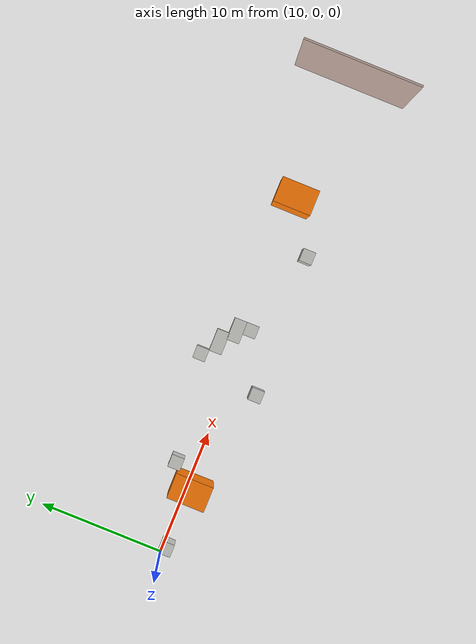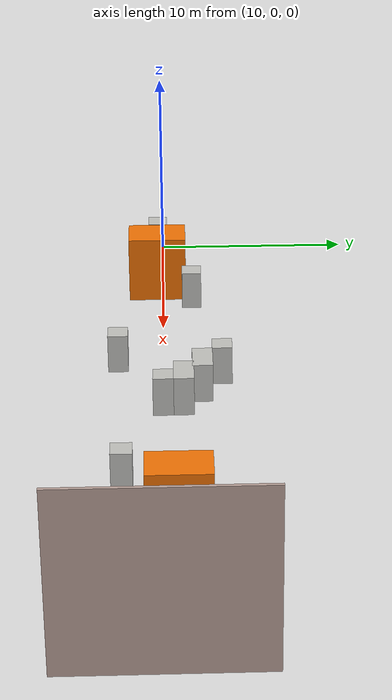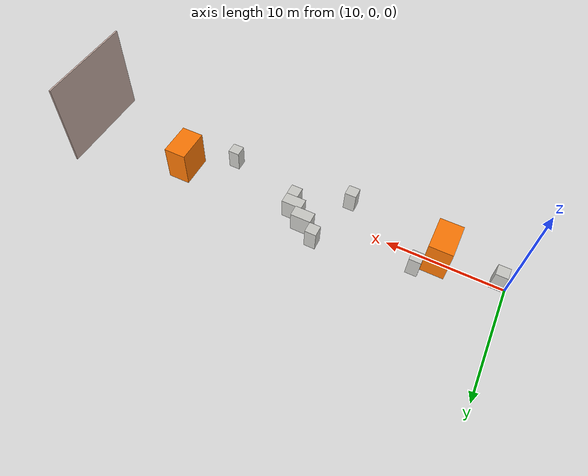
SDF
<sdf version="1.7">
 <world name="default">
  <light name="sun" type="directional">
   <pose>0 0 10 0 -0 0</pose>
   <diffuse>0.8 0.8 0.8 1</diffuse>
   <specular>0.2 0.2 0.2 1</specular>
   <attenuation>
    <range>1000</range>
    <constant>0.9</constant>
    <linear>0.01</linear>
    <quadratic>0.001</quadratic>
   </attenuation>
   <direction>-0.5 0.1 -0.9</direction>
   <spot><inner_angle>0</inner_angle><outer_angle>0</outer_angle><falloff>0</falloff></spot>
  </light>
  <gravity>0 0 -9.8</gravity>
  <magnetic_field>6e-06 2.3e-05 -4.2e-05</magnetic_field>
  <atmosphere type="adiabatic"/>
  <physics type="ode">
   <max_step_size>0.001</max_step_size>
   <real_time_factor>1</real_time_factor>
   <real_time_update_rate>1000</real_time_update_rate>
  </physics>
  <scene><ambient>0.4 0.4 0.4 1</ambient><background>0.7 0.7 0.7 1</background><shadows>1</shadows></scene>
  <spherical_coordinates>
   <surface_model>EARTH_WGS84</surface_model>
   <latitude_deg>0</latitude_deg>
   <longitude_deg>0</longitude_deg>
   <elevation>0</elevation>
   <heading_deg>0</heading_deg>
  </spherical_coordinates>
  <model name="tunnel_wall">
   <pose>41.9281 0 0 0 -0 0</pose>
   <link name="Wall_0">
    <collision name="Wall_0_Collision">
     <geometry><box><size>9.15 0.15 8.5</size></box></geometry>
     <pose>0 0 4.25 0 -0 0</pose>
    </collision>
    <visual name="Wall_0_Visual">
     <pose>0 0 4.25 0 -0 0</pose>
     <geometry><box><size>9.15 0.15 8.5</size></box></geometry>
     <material>
      <script><uri>file://media/materials/scripts/gazebo.material</uri><name>Gazebo/Grey</name></script>
      <ambient>0.760784 0.662745 0.627451 1</ambient>
     </material>
     <meta><layer>0</layer></meta>
    </visual>
    <pose>7.4625 0 0 0 -0 1.5708</pose>
   </link>
   <static>1</static>
  </model>
  <model name="box_1_1_2">
   <pose>11.6268 1.17689 0 0 -0 0</pose>
   <link name="Wall_0">
    <collision name="Wall_0_Collision">
     <geometry><box><size>1.01 1 2</size></box></geometry>
     <pose>0 0 1 0 -0 0</pose>
    </collision>
    <visual name="Wall_0_Visual">
     <pose>0 0 1 0 -0 0</pose>
     <geometry><box><size>1.01 1 2</size></box></geometry>
     <material>
      <script><uri>file://media/materials/scripts/gazebo.material</uri><name>Gazebo/CeilingTiled</name></script>
      <ambient>0.921569 0.807843 0.615686 1</ambient>
     </material>
     <meta><layer>0</layer></meta>
    </visual>
    <pose>-0.85 -1.44 0 0 -0 0</pose>
   </link>
   <static>1</static>
  </model>
  <model name="box_1_1_2_0">
   <pose>18.0507 2.96156 0 0 -0 0</pose>
   <link name="Wall_0">
    <collision name="Wall_0_Collision">
     <geometry><box><size>1.01 1 2</size></box></geometry>
     <pose>0 0 1 0 -0 0</pose>
    </collision>
    <visual name="Wall_0_Visual">
     <pose>0 0 1 0 -0 0</pose>
     <geometry><box><size>1.01 1 2</size></box></geometry>
     <material>
      <script><uri>file://media/materials/scripts/gazebo.material</uri><name>Gazebo/CeilingTiled</name></script>
      <ambient>0.921569 0.807843 0.615686 1</ambient>
     </material>
     <meta><layer>0</layer></meta>
    </visual>
    <pose>-0.85 -1.44 0 0 -0 0</pose>
   </link>
   <static>1</static>
  </model>
  <model name="box_1_1_2_1">
   <pose>25.1167 -0.811395 0 0 -0 0</pose>
   <link name="Wall_0">
    <collision name="Wall_0_Collision">
     <geometry><box><size>1.01 1 2</size></box></geometry>
     <pose>0 0 1 0 -0 0</pose>
    </collision>
    <visual name="Wall_0_Visual">
     <pose>0 0 1 0 -0 0</pose>
     <geometry><box><size>1.01 1 2</size></box></geometry>
     <material>
      <script><uri>file://media/materials/scripts/gazebo.material</uri><name>Gazebo/CeilingTiled</name></script>
      <ambient>0.921569 0.807843 0.615686 1</ambient>
     </material>
     <meta><layer>0</layer></meta>
    </visual>
    <pose>-0.85 -1.44 0 0 -0 0</pose>
   </link>
   <static>1</static>
  </model>
  <model name="box_1_1_2_2">
   <pose>29.5831 1.4324 0 0 -0 0</pose>
   <link name="Wall_0">
    <collision name="Wall_0_Collision">
     <geometry><box><size>1.01 1 2</size></box></geometry>
     <pose>0 0 1 0 -0 0</pose>
    </collision>
    <visual name="Wall_0_Visual">
     <pose>0 0 1 0 -0 0</pose>
     <geometry><box><size>1.01 1 2</size></box></geometry>
     <material>
      <script><uri>file://media/materials/scripts/gazebo.material</uri><name>Gazebo/CeilingTiled</name></script>
      <ambient>0.921569 0.807843 0.615686 1</ambient>
     </material>
     <meta><layer>0</layer></meta>
    </visual>
    <pose>-0.85 -1.44 0 0 -0 0</pose>
   </link>
   <static>1</static>
  </model>
  <model name="box_1.8_1_2">
   <pose>28.7837 2.42278 0 0 -0 0</pose>
   <link name="Wall_0">
    <collision name="Wall_0_Collision">
     <geometry><box><size>1.8 1 2</size></box></geometry>
     <pose>0 0 1 0 -0 0</pose>
    </collision>
    <visual name="Wall_0_Visual">
     <pose>0 0 1 0 -0 0</pose>
     <geometry><box><size>1.8 1 2</size></box></geometry>
     <material>
      <script><uri>file://media/materials/scripts/gazebo.material</uri><name>Gazebo/CeilingTiled</name></script>
      <ambient>0.921569 0.807843 0.615686 1</ambient>
     </material>
     <meta><layer>0</layer></meta>
    </visual>
    <pose>-0.455 -1.44 0 0 -0 0</pose>
   </link>
   <static>1</static>
  </model>
  <model name="box_1.8_1_2_0">
   <pose>27.4993 3.35385 0 0 -0 0</pose>
   <link name="Wall_0">
    <collision name="Wall_0_Collision">
     <geometry><box><size>1.8 1 2</size></box></geometry>
     <pose>0 0 1 0 -0 0</pose>
    </collision>
    <visual name="Wall_0_Visual">
     <pose>0 0 1 0 -0 0</pose>
     <geometry><box><size>1.8 1 2</size></box></geometry>
     <material>
      <script><uri>file://media/materials/scripts/gazebo.material</uri><name>Gazebo/CeilingTiled</name></script>
      <ambient>0.921569 0.807843 0.615686 1</ambient>
     </material>
     <meta><layer>0</layer></meta>
    </visual>
    <pose>-0.455 -1.44 0 0 -0 0</pose>
   </link>
   <static>1</static>
  </model>
  <model name="box_1_1_2_3">
   <pose>26.5208 4.34318 0 0 -0 0</pose>
   <link name="Wall_0">
    <collision name="Wall_0_Collision">
     <geometry><box><size>1.01 1 2</size></box></geometry>
     <pose>0 0 1 0 -0 0</pose>
    </collision>
    <visual name="Wall_0_Visual">
     <pose>0 0 1 0 -0 0</pose>
     <geometry><box><size>1.01 1 2</size></box></geometry>
     <material>
      <script><uri>file://media/materials/scripts/gazebo.material</uri><name>Gazebo/CeilingTiled</name></script>
      <ambient>0.921569 0.807843 0.615686 1</ambient>
     </material>
     <meta><layer>0</layer></meta>
    </visual>
    <pose>-0.85 -1.44 0 0 -0 0</pose>
   </link>
   <static>1</static>
  </model>
  <model name="box_1_1_2_4">
   <pose>36.4694 -0.458762 0 0 -0 0</pose>
   <link name="Wall_0">
    <collision name="Wall_0_Collision">
     <geometry><box><size>1.01 1 2</size></box></geometry>
     <pose>0 0 1 0 -0 0</pose>
    </collision>
    <visual name="Wall_0_Visual">
     <pose>0 0 1 0 -0 0</pose>
     <geometry><box><size>1.01 1 2</size></box></geometry>
     <material>
      <script><uri>file://media/materials/scripts/gazebo.material</uri><name>Gazebo/CeilingTiled</name></script>
      <ambient>0.921569 0.807843 0.615686 1</ambient>
     </material>
     <meta><layer>0</layer></meta>
    </visual>
    <pose>-0.85 -1.44 0 0 -0 0</pose>
   </link>
   <static>1</static>
  </model>
  <model name="box3_2_3.5">
   <pose>39.4364 0.680421 0 0 -0 0</pose>
   <link name="Wall_7">
    <collision name="Wall_7_Collision">
     <geometry><box><size>3 2 3.5</size></box></geometry>
     <pose>0 0 1.75 0 -0 0</pose>
    </collision>
    <visual name="Wall_7_Visual">
     <pose>0 0 1.75 0 -0 0</pose>
     <geometry><box><size>3 2 3.5</size></box></geometry>
     <material>
      <script><uri>file://media/materials/scripts/gazebo.material</uri><name>Gazebo/Grey</name></script>
      <ambient>0.996078 0.47451 0.0196078 1</ambient>
     </material>
     <meta><layer>0</layer></meta>
    </visual>
    <pose>0 0 0 0 -0 1.5708</pose>
   </link>
   <static>1</static>
  </model>
  <model name="box3_2_3.5_0">
   <pose>15.6899 -0.274963 0 0 -0 0</pose>
   <link name="Wall_7">
    <collision name="Wall_7_Collision">
     <geometry><box><size>3 2 3.5</size></box></geometry>
     <pose>0 0 1.75 0 -0 0</pose>
    </collision>
    <visual name="Wall_7_Visual">
     <pose>0 0 1.75 0 -0 0</pose>
     <geometry><box><size>3 2 3.5</size></box></geometry>
     <material>
      <script><uri>file://media/materials/scripts/gazebo.material</uri><name>Gazebo/Grey</name></script>
      <ambient>0.996078 0.47451 0.0196078 1</ambient>
     </material>
     <meta><layer>0</layer></meta>
    </visual>
    <pose>0 0 0 0 -0 1.5708</pose>
   </link>
   <static>1</static>
  </model>
 </world>
</sdf>
